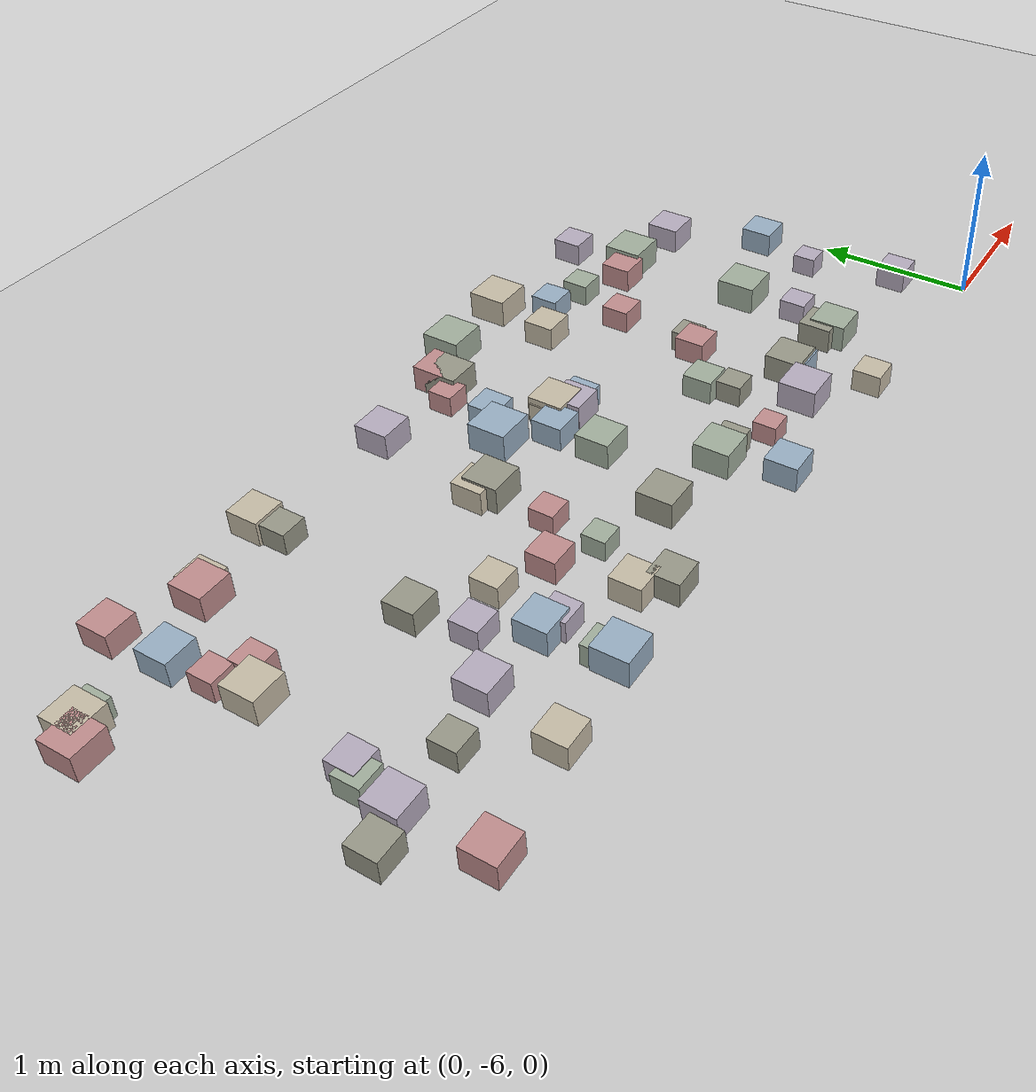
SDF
<sdf version="1.6">
 <world name="small_maze_world">
  <include><uri>model://ground_plane</uri></include>
  <include><uri>model://sun</uri></include>
  <model name="box_7">
   <static>false</static>
   <pose>-5.69 -3.78 0.05 0 0 0</pose>
   <link name="link">
    <inertial>
     <mass>0.2</mass>
     <inertia><ixx>0.001</ixx><iyy>0.001</iyy><izz>0.001</izz><ixy>0</ixy><ixz>0</ixz><iyz>0</iyz></inertia>
    </inertial>
    <collision name="collision"><geometry><box><size>0.22 0.22 0.22</size></box></geometry></collision>
    <visual name="visual">
     <geometry><box><size>0.22 0.22 0.22</size></box></geometry>
     <material><ambient>0.78 0.74 0.66 1</ambient><diffuse>0.78 0.74 0.66 1</diffuse></material>
    </visual>
   </link>
  </model>
  <model name="box_13">
   <static>false</static>
   <pose>-0.29 -4.98 0.05 0 0 0</pose>
   <link name="link">
    <inertial>
     <mass>0.2</mass>
     <inertia><ixx>0.001</ixx><iyy>0.001</iyy><izz>0.001</izz><ixy>0</ixy><ixz>0</ixz><iyz>0</iyz></inertia>
    </inertial>
    <collision name="collision"><geometry><box><size>0.15 0.15 0.15</size></box></geometry></collision>
    <visual name="visual">
     <geometry><box><size>0.15 0.15 0.15</size></box></geometry>
     <material><ambient>0.72 0.68 0.75 1</ambient><diffuse>0.72 0.68 0.75 1</diffuse></material>
    </visual>
   </link>
  </model>
  <model name="box_20">
   <static>false</static>
   <pose>-4.71 -3.63 0.05 0 0 0</pose>
   <link name="link">
    <inertial>
     <mass>0.2</mass>
     <inertia><ixx>0.001</ixx><iyy>0.001</iyy><izz>0.001</izz><ixy>0</ixy><ixz>0</ixz><iyz>0</iyz></inertia>
    </inertial>
    <collision name="collision"><geometry><box><size>0.19 0.19 0.19</size></box></geometry></collision>
    <visual name="visual">
     <geometry><box><size>0.19 0.19 0.19</size></box></geometry>
     <material><ambient>0.78 0.74 0.66 1</ambient><diffuse>0.78 0.74 0.66 1</diffuse></material>
    </visual>
   </link>
  </model>
  <model name="box_23">
   <static>false</static>
   <pose>-5.53 -5.41 0.05 0 0 0</pose>
   <link name="link">
    <inertial>
     <mass>0.2</mass>
     <inertia><ixx>0.001</ixx><iyy>0.001</iyy><izz>0.001</izz><ixy>0</ixy><ixz>0</ixz><iyz>0</iyz></inertia>
    </inertial>
    <collision name="collision"><geometry><box><size>0.19 0.19 0.19</size></box></geometry></collision>
    <visual name="visual">
     <geometry><box><size>0.19 0.19 0.19</size></box></geometry>
     <material><ambient>0.6 0.6 0.54 1</ambient><diffuse>0.6 0.6 0.54 1</diffuse></material>
    </visual>
   </link>
  </model>
  <model name="box_33">
   <static>false</static>
   <pose>-4.2 -3.53 0.05 0 0 0</pose>
   <link name="link">
    <inertial>
     <mass>0.2</mass>
     <inertia><ixx>0.001</ixx><iyy>0.001</iyy><izz>0.001</izz><ixy>0</ixy><ixz>0</ixz><iyz>0</iyz></inertia>
    </inertial>
    <collision name="collision"><geometry><box><size>0.21 0.21 0.21</size></box></geometry></collision>
    <visual name="visual">
     <geometry><box><size>0.21 0.21 0.21</size></box></geometry>
     <material><ambient>0.78 0.74 0.66 1</ambient><diffuse>0.78 0.74 0.66 1</diffuse></material>
    </visual>
   </link>
  </model>
  <model name="box_36">
   <static>false</static>
   <pose>-0.86 -3.91 0.05 0 0 0</pose>
   <link name="link">
    <inertial>
     <mass>0.2</mass>
     <inertia><ixx>0.001</ixx><iyy>0.001</iyy><izz>0.001</izz><ixy>0</ixy><ixz>0</ixz><iyz>0</iyz></inertia>
    </inertial>
    <collision name="collision"><geometry><box><size>0.25 0.25 0.25</size></box></geometry></collision>
    <visual name="visual">
     <geometry><box><size>0.25 0.25 0.25</size></box></geometry>
     <material><ambient>0.64 0.69 0.62 1</ambient><diffuse>0.64 0.69 0.62 1</diffuse></material>
    </visual>
   </link>
  </model>
  <model name="box_38">
   <static>false</static>
   <pose>-4.62 -5.77 0.05 0 0 0</pose>
   <link name="link">
    <inertial>
     <mass>0.2</mass>
     <inertia><ixx>0.001</ixx><iyy>0.001</iyy><izz>0.001</izz><ixy>0</ixy><ixz>0</ixz><iyz>0</iyz></inertia>
    </inertial>
    <collision name="collision"><geometry><box><size>0.2 0.2 0.2</size></box></geometry></collision>
    <visual name="visual">
     <geometry><box><size>0.2 0.2 0.2</size></box></geometry>
     <material><ambient>0.78 0.74 0.66 1</ambient><diffuse>0.78 0.74 0.66 1</diffuse></material>
    </visual>
   </link>
  </model>
  <model name="box_39">
   <static>false</static>
   <pose>-0.14 -5.56 0.05 0 0 0</pose>
   <link name="link">
    <inertial>
     <mass>0.2</mass>
     <inertia><ixx>0.001</ixx><iyy>0.001</iyy><izz>0.001</izz><ixy>0</ixy><ixz>0</ixz><iyz>0</iyz></inertia>
    </inertial>
    <collision name="collision"><geometry><box><size>0.19 0.19 0.19</size></box></geometry></collision>
    <visual name="visual">
     <geometry><box><size>0.19 0.19 0.19</size></box></geometry>
     <material><ambient>0.72 0.68 0.75 1</ambient><diffuse>0.72 0.68 0.75 1</diffuse></material>
    </visual>
   </link>
  </model>
  <model name="box_41">
   <static>false</static>
   <pose>-3.65 -5.07 0.05 0 0 0</pose>
   <link name="link">
    <inertial>
     <mass>0.2</mass>
     <inertia><ixx>0.001</ixx><iyy>0.001</iyy><izz>0.001</izz><ixy>0</ixy><ixz>0</ixz><iyz>0</iyz></inertia>
    </inertial>
    <collision name="collision"><geometry><box><size>0.19 0.19 0.19</size></box></geometry></collision>
    <visual name="visual">
     <geometry><box><size>0.19 0.19 0.19</size></box></geometry>
     <material><ambient>0.76 0.56 0.56 1</ambient><diffuse>0.76 0.56 0.56 1</diffuse></material>
    </visual>
   </link>
  </model>
  <model name="box_45">
   <static>false</static>
   <pose>-1.45 -5.4 0.05 0 0 0</pose>
   <link name="link">
    <inertial>
     <mass>0.2</mass>
     <inertia><ixx>0.001</ixx><iyy>0.001</iyy><izz>0.001</izz><ixy>0</ixy><ixz>0</ixz><iyz>0</iyz></inertia>
    </inertial>
    <collision name="collision"><geometry><box><size>0.23 0.23 0.23</size></box></geometry></collision>
    <visual name="visual">
     <geometry><box><size>0.23 0.23 0.23</size></box></geometry>
     <material><ambient>0.6 0.6 0.54 1</ambient><diffuse>0.6 0.6 0.54 1</diffuse></material>
    </visual>
   </link>
  </model>
  <model name="box_47">
   <static>false</static>
   <pose>-3.4 -4.42 0.05 0 0 0</pose>
   <link name="link">
    <inertial>
     <mass>0.2</mass>
     <inertia><ixx>0.001</ixx><iyy>0.001</iyy><izz>0.001</izz><ixy>0</ixy><ixz>0</ixz><iyz>0</iyz></inertia>
    </inertial>
    <collision name="collision"><geometry><box><size>0.2 0.2 0.2</size></box></geometry></collision>
    <visual name="visual">
     <geometry><box><size>0.2 0.2 0.2</size></box></geometry>
     <material><ambient>0.78 0.74 0.66 1</ambient><diffuse>0.78 0.74 0.66 1</diffuse></material>
    </visual>
   </link>
  </model>
  <model name="box_53">
   <static>false</static>
   <pose>-1.88 -5.03 0.05 0 0 0</pose>
   <link name="link">
    <inertial>
     <mass>0.2</mass>
     <inertia><ixx>0.001</ixx><iyy>0.001</iyy><izz>0.001</izz><ixy>0</ixy><ixz>0</ixz><iyz>0</iyz></inertia>
    </inertial>
    <collision name="collision"><geometry><box><size>0.19 0.19 0.19</size></box></geometry></collision>
    <visual name="visual">
     <geometry><box><size>0.19 0.19 0.19</size></box></geometry>
     <material><ambient>0.64 0.69 0.62 1</ambient><diffuse>0.64 0.69 0.62 1</diffuse></material>
    </visual>
   </link>
  </model>
  <model name="box_80">
   <static>false</static>
   <pose>-0.45 -3.98 0.05 0 0 0</pose>
   <link name="link">
    <inertial>
     <mass>0.2</mass>
     <inertia><ixx>0.001</ixx><iyy>0.001</iyy><izz>0.001</izz><ixy>0</ixy><ixz>0</ixz><iyz>0</iyz></inertia>
    </inertial>
    <collision name="collision"><geometry><box><size>0.22 0.22 0.22</size></box></geometry></collision>
    <visual name="visual">
     <geometry><box><size>0.22 0.22 0.22</size></box></geometry>
     <material><ambient>0.72 0.68 0.75 1</ambient><diffuse>0.72 0.68 0.75 1</diffuse></material>
    </visual>
   </link>
  </model>
  <model name="box_81">
   <static>false</static>
   <pose>-3.59 -5.55 0.05 0 0 0</pose>
   <link name="link">
    <inertial>
     <mass>0.2</mass>
     <inertia><ixx>0.001</ixx><iyy>0.001</iyy><izz>0.001</izz><ixy>0</ixy><ixz>0</ixz><iyz>0</iyz></inertia>
    </inertial>
    <collision name="collision"><geometry><box><size>0.2 0.2 0.2</size></box></geometry></collision>
    <visual name="visual">
     <geometry><box><size>0.2 0.2 0.2</size></box></geometry>
     <material><ambient>0.78 0.74 0.66 1</ambient><diffuse>0.78 0.74 0.66 1</diffuse></material>
    </visual>
   </link>
  </model>
  <model name="box_87">
   <static>false</static>
   <pose>-5.23 -5.04 0.05 0 0 0</pose>
   <link name="link">
    <inertial>
     <mass>0.2</mass>
     <inertia><ixx>0.001</ixx><iyy>0.001</iyy><izz>0.001</izz><ixy>0</ixy><ixz>0</ixz><iyz>0</iyz></inertia>
    </inertial>
    <collision name="collision"><geometry><box><size>0.18 0.18 0.18</size></box></geometry></collision>
    <visual name="visual">
     <geometry><box><size>0.18 0.18 0.18</size></box></geometry>
     <material><ambient>0.72 0.68 0.75 1</ambient><diffuse>0.72 0.68 0.75 1</diffuse></material>
    </visual>
   </link>
  </model>
  <model name="box_92">
   <static>false</static>
   <pose>-2.95 -5.36 0.05 0 0 0</pose>
   <link name="link">
    <inertial>
     <mass>0.2</mass>
     <inertia><ixx>0.001</ixx><iyy>0.001</iyy><izz>0.001</izz><ixy>0</ixy><ixz>0</ixz><iyz>0</iyz></inertia>
    </inertial>
    <collision name="collision"><geometry><box><size>0.23 0.23 0.23</size></box></geometry></collision>
    <visual name="visual">
     <geometry><box><size>0.23 0.23 0.23</size></box></geometry>
     <material><ambient>0.6 0.6 0.54 1</ambient><diffuse>0.6 0.6 0.54 1</diffuse></material>
    </visual>
   </link>
  </model>
  <model name="box_95">
   <static>false</static>
   <pose>-1.56 -4.8 0.05 0 0 0</pose>
   <link name="link">
    <inertial>
     <mass>0.2</mass>
     <inertia><ixx>0.001</ixx><iyy>0.001</iyy><izz>0.001</izz><ixy>0</ixy><ixz>0</ixz><iyz>0</iyz></inertia>
    </inertial>
    <collision name="collision"><geometry><box><size>0.19 0.19 0.19</size></box></geometry></collision>
    <visual name="visual">
     <geometry><box><size>0.19 0.19 0.19</size></box></geometry>
     <material><ambient>0.76 0.56 0.56 1</ambient><diffuse>0.76 0.56 0.56 1</diffuse></material>
    </visual>
   </link>
  </model>
  <model name="box_98">
   <static>false</static>
   <pose>-3.39 -5.22 0.05 0 0 0</pose>
   <link name="link">
    <inertial>
     <mass>0.2</mass>
     <inertia><ixx>0.001</ixx><iyy>0.001</iyy><izz>0.001</izz><ixy>0</ixy><ixz>0</ixz><iyz>0</iyz></inertia>
    </inertial>
    <collision name="collision"><geometry><box><size>0.15 0.15 0.15</size></box></geometry></collision>
    <visual name="visual">
     <geometry><box><size>0.15 0.15 0.15</size></box></geometry>
     <material><ambient>0.64 0.69 0.62 1</ambient><diffuse>0.64 0.69 0.62 1</diffuse></material>
    </visual>
   </link>
  </model>
  <model name="box_101">
   <static>false</static>
   <pose>-5.16 -4.12 0.05 0 0 0</pose>
   <link name="link">
    <inertial>
     <mass>0.2</mass>
     <inertia><ixx>0.001</ixx><iyy>0.001</iyy><izz>0.001</izz><ixy>0</ixy><ixz>0</ixz><iyz>0</iyz></inertia>
    </inertial>
    <collision name="collision"><geometry><box><size>0.16 0.16 0.16</size></box></geometry></collision>
    <visual name="visual">
     <geometry><box><size>0.16 0.16 0.16</size></box></geometry>
     <material><ambient>0.76 0.56 0.56 1</ambient><diffuse>0.76 0.56 0.56 1</diffuse></material>
    </visual>
   </link>
  </model>
  <model name="box_110">
   <static>false</static>
   <pose>-4.2 -3.72 0.05 0 0 0</pose>
   <link name="link">
    <inertial>
     <mass>0.2</mass>
     <inertia><ixx>0.001</ixx><iyy>0.001</iyy><izz>0.001</izz><ixy>0</ixy><ixz>0</ixz><iyz>0</iyz></inertia>
    </inertial>
    <collision name="collision"><geometry><box><size>0.17 0.17 0.17</size></box></geometry></collision>
    <visual name="visual">
     <geometry><box><size>0.17 0.17 0.17</size></box></geometry>
     <material><ambient>0.6 0.6 0.54 1</ambient><diffuse>0.6 0.6 0.54 1</diffuse></material>
    </visual>
   </link>
  </model>
  <model name="box_120">
   <static>false</static>
   <pose>-5.13 -4.36 0.05 0 0 0</pose>
   <link name="link">
    <inertial>
     <mass>0.2</mass>
     <inertia><ixx>0.001</ixx><iyy>0.001</iyy><izz>0.001</izz><ixy>0</ixy><ixz>0</ixz><iyz>0</iyz></inertia>
    </inertial>
    <collision name="collision"><geometry><box><size>0.22 0.22 0.22</size></box></geometry></collision>
    <visual name="visual">
     <geometry><box><size>0.22 0.22 0.22</size></box></geometry>
     <material><ambient>0.78 0.74 0.66 1</ambient><diffuse>0.78 0.74 0.66 1</diffuse></material>
    </visual>
   </link>
  </model>
  <model name="box_122">
   <static>false</static>
   <pose>-2.07 -5.57 0.05 0 0 0</pose>
   <link name="link">
    <inertial>
     <mass>0.2</mass>
     <inertia><ixx>0.001</ixx><iyy>0.001</iyy><izz>0.001</izz><ixy>0</ixy><ixz>0</ixz><iyz>0</iyz></inertia>
    </inertial>
    <collision name="collision"><geometry><box><size>0.15 0.15 0.15</size></box></geometry></collision>
    <visual name="visual">
     <geometry><box><size>0.15 0.15 0.15</size></box></geometry>
     <material><ambient>0.76 0.56 0.56 1</ambient><diffuse>0.76 0.56 0.56 1</diffuse></material>
    </visual>
   </link>
  </model>
  <model name="box_126">
   <static>false</static>
   <pose>-5.28 -5.11 0.05 0 0 0</pose>
   <link name="link">
    <inertial>
     <mass>0.2</mass>
     <inertia><ixx>0.001</ixx><iyy>0.001</iyy><izz>0.001</izz><ixy>0</ixy><ixz>0</ixz><iyz>0</iyz></inertia>
    </inertial>
    <collision name="collision"><geometry><box><size>0.17 0.17 0.17</size></box></geometry></collision>
    <visual name="visual">
     <geometry><box><size>0.17 0.17 0.17</size></box></geometry>
     <material><ambient>0.64 0.69 0.62 1</ambient><diffuse>0.64 0.69 0.62 1</diffuse></material>
    </visual>
   </link>
  </model>
  <model name="box_133">
   <static>false</static>
   <pose>-2.71 -4.49 0.05 0 0 0</pose>
   <link name="link">
    <inertial>
     <mass>0.2</mass>
     <inertia><ixx>0.001</ixx><iyy>0.001</iyy><izz>0.001</izz><ixy>0</ixy><ixz>0</ixz><iyz>0</iyz></inertia>
    </inertial>
    <collision name="collision"><geometry><box><size>0.2 0.2 0.2</size></box></geometry></collision>
    <visual name="visual">
     <geometry><box><size>0.2 0.2 0.2</size></box></geometry>
     <material><ambient>0.6 0.69 0.77 1</ambient><diffuse>0.6 0.69 0.77 1</diffuse></material>
    </visual>
   </link>
  </model>
  <model name="box_137">
   <static>false</static>
   <pose>-4.76 -3.67 0.05 0 0 0</pose>
   <link name="link">
    <inertial>
     <mass>0.2</mass>
     <inertia><ixx>0.001</ixx><iyy>0.001</iyy><izz>0.001</izz><ixy>0</ixy><ixz>0</ixz><iyz>0</iyz></inertia>
    </inertial>
    <collision name="collision"><geometry><box><size>0.22 0.22 0.22</size></box></geometry></collision>
    <visual name="visual">
     <geometry><box><size>0.22 0.22 0.22</size></box></geometry>
     <material><ambient>0.76 0.56 0.56 1</ambient><diffuse>0.76 0.56 0.56 1</diffuse></material>
    </visual>
   </link>
  </model>
  <model name="box_138">
   <static>false</static>
   <pose>-4.54 -5.27 0.05 0 0 0</pose>
   <link name="link">
    <inertial>
     <mass>0.2</mass>
     <inertia><ixx>0.001</ixx><iyy>0.001</iyy><izz>0.001</izz><ixy>0</ixy><ixz>0</ixz><iyz>0</iyz></inertia>
    </inertial>
    <collision name="collision"><geometry><box><size>0.21 0.21 0.21</size></box></geometry></collision>
    <visual name="visual">
     <geometry><box><size>0.21 0.21 0.21</size></box></geometry>
     <material><ambient>0.72 0.68 0.75 1</ambient><diffuse>0.72 0.68 0.75 1</diffuse></material>
    </visual>
   </link>
  </model>
  <model name="box_146">
   <static>false</static>
   <pose>-4.31 -4.66 0.05 0 0 0</pose>
   <link name="link">
    <inertial>
     <mass>0.2</mass>
     <inertia><ixx>0.001</ixx><iyy>0.001</iyy><izz>0.001</izz><ixy>0</ixy><ixz>0</ixz><iyz>0</iyz></inertia>
    </inertial>
    <collision name="collision"><geometry><box><size>0.2 0.2 0.2</size></box></geometry></collision>
    <visual name="visual">
     <geometry><box><size>0.2 0.2 0.2</size></box></geometry>
     <material><ambient>0.6 0.6 0.54 1</ambient><diffuse>0.6 0.6 0.54 1</diffuse></material>
    </visual>
   </link>
  </model>
  <model name="box_153">
   <static>false</static>
   <pose>-2.78 -4.08 0.05 0 0 0</pose>
   <link name="link">
    <inertial>
     <mass>0.2</mass>
     <inertia><ixx>0.001</ixx><iyy>0.001</iyy><izz>0.001</izz><ixy>0</ixy><ixz>0</ixz><iyz>0</iyz></inertia>
    </inertial>
    <collision name="collision"><geometry><box><size>0.19 0.19 0.19</size></box></geometry></collision>
    <visual name="visual">
     <geometry><box><size>0.19 0.19 0.19</size></box></geometry>
     <material><ambient>0.6 0.69 0.77 1</ambient><diffuse>0.6 0.69 0.77 1</diffuse></material>
    </visual>
   </link>
  </model>
  <model name="box_157">
   <static>false</static>
   <pose>-4.08 -5.3 0.05 0 0 0</pose>
   <link name="link">
    <inertial>
     <mass>0.2</mass>
     <inertia><ixx>0.001</ixx><iyy>0.001</iyy><izz>0.001</izz><ixy>0</ixy><ixz>0</ixz><iyz>0</iyz></inertia>
    </inertial>
    <collision name="collision"><geometry><box><size>0.21 0.21 0.21</size></box></geometry></collision>
    <visual name="visual">
     <geometry><box><size>0.21 0.21 0.21</size></box></geometry>
     <material><ambient>0.6 0.69 0.77 1</ambient><diffuse>0.6 0.69 0.77 1</diffuse></material>
    </visual>
   </link>
  </model>
  <model name="box_169">
   <static>false</static>
   <pose>-5.31 -5.34 0.05 0 0 0</pose>
   <link name="link">
    <inertial>
     <mass>0.2</mass>
     <inertia><ixx>0.001</ixx><iyy>0.001</iyy><izz>0.001</izz><ixy>0</ixy><ixz>0</ixz><iyz>0</iyz></inertia>
    </inertial>
    <collision name="collision"><geometry><box><size>0.21 0.21 0.21</size></box></geometry></collision>
    <visual name="visual">
     <geometry><box><size>0.21 0.21 0.21</size></box></geometry>
     <material><ambient>0.72 0.68 0.75 1</ambient><diffuse>0.72 0.68 0.75 1</diffuse></material>
    </visual>
   </link>
  </model>
  <model name="box_179">
   <static>false</static>
   <pose>-2.93 -4.24 0.05 0 0 0</pose>
   <link name="link">
    <inertial>
     <mass>0.2</mass>
     <inertia><ixx>0.001</ixx><iyy>0.001</iyy><izz>0.001</izz><ixy>0</ixy><ixz>0</ixz><iyz>0</iyz></inertia>
    </inertial>
    <collision name="collision"><geometry><box><size>0.25 0.25 0.25</size></box></geometry></collision>
    <visual name="visual">
     <geometry><box><size>0.25 0.25 0.25</size></box></geometry>
     <material><ambient>0.6 0.69 0.77 1</ambient><diffuse>0.6 0.69 0.77 1</diffuse></material>
    </visual>
   </link>
  </model>
  <model name="box_180">
   <static>false</static>
   <pose>-5.0 -4.24 0.05 0 0 0</pose>
   <link name="link">
    <inertial>
     <mass>0.2</mass>
     <inertia><ixx>0.001</ixx><iyy>0.001</iyy><izz>0.001</izz><ixy>0</ixy><ixz>0</ixz><iyz>0</iyz></inertia>
    </inertial>
    <collision name="collision"><geometry><box><size>0.17 0.17 0.17</size></box></geometry></collision>
    <visual name="visual">
     <geometry><box><size>0.17 0.17 0.17</size></box></geometry>
     <material><ambient>0.76 0.56 0.56 1</ambient><diffuse>0.76 0.56 0.56 1</diffuse></material>
    </visual>
   </link>
  </model>
  <model name="box_205">
   <static>false</static>
   <pose>-3.98 -5.35 0.05 0 0 0</pose>
   <link name="link">
    <inertial>
     <mass>0.2</mass>
     <inertia><ixx>0.001</ixx><iyy>0.001</iyy><izz>0.001</izz><ixy>0</ixy><ixz>0</ixz><iyz>0</iyz></inertia>
    </inertial>
    <collision name="collision"><geometry><box><size>0.17 0.17 0.17</size></box></geometry></collision>
    <visual name="visual">
     <geometry><box><size>0.17 0.17 0.17</size></box></geometry>
     <material><ambient>0.72 0.68 0.75 1</ambient><diffuse>0.72 0.68 0.75 1</diffuse></material>
    </visual>
   </link>
  </model>
  <model name="box_211">
   <static>false</static>
   <pose>-3.27 -3.66 0.05 0 0 0</pose>
   <link name="link">
    <inertial>
     <mass>0.2</mass>
     <inertia><ixx>0.001</ixx><iyy>0.001</iyy><izz>0.001</izz><ixy>0</ixy><ixz>0</ixz><iyz>0</iyz></inertia>
    </inertial>
    <collision name="collision"><geometry><box><size>0.22 0.22 0.22</size></box></geometry></collision>
    <visual name="visual">
     <geometry><box><size>0.22 0.22 0.22</size></box></geometry>
     <material><ambient>0.72 0.68 0.75 1</ambient><diffuse>0.72 0.68 0.75 1</diffuse></material>
    </visual>
   </link>
  </model>
  <model name="box_224">
   <static>false</static>
   <pose>-1.62 -3.75 0.05 0 0 0</pose>
   <link name="link">
    <inertial>
     <mass>0.2</mass>
     <inertia><ixx>0.001</ixx><iyy>0.001</iyy><izz>0.001</izz><ixy>0</ixy><ixz>0</ixz><iyz>0</iyz></inertia>
    </inertial>
    <collision name="collision"><geometry><box><size>0.18 0.18 0.18</size></box></geometry></collision>
    <visual name="visual">
     <geometry><box><size>0.18 0.18 0.18</size></box></geometry>
     <material><ambient>0.6 0.69 0.77 1</ambient><diffuse>0.6 0.69 0.77 1</diffuse></material>
    </visual>
   </link>
  </model>
  <model name="box_233">
   <static>false</static>
   <pose>-2.33 -3.47 0.05 0 0 0</pose>
   <link name="link">
    <inertial>
     <mass>0.2</mass>
     <inertia><ixx>0.001</ixx><iyy>0.001</iyy><izz>0.001</izz><ixy>0</ixy><ixz>0</ixz><iyz>0</iyz></inertia>
    </inertial>
    <collision name="collision"><geometry><box><size>0.25 0.25 0.25</size></box></geometry></collision>
    <visual name="visual">
     <geometry><box><size>0.25 0.25 0.25</size></box></geometry>
     <material><ambient>0.64 0.69 0.62 1</ambient><diffuse>0.64 0.69 0.62 1</diffuse></material>
    </visual>
   </link>
  </model>
  <model name="box_247">
   <static>false</static>
   <pose>-2.31 -5.44 0.05 0 0 0</pose>
   <link name="link">
    <inertial>
     <mass>0.2</mass>
     <inertia><ixx>0.001</ixx><iyy>0.001</iyy><izz>0.001</izz><ixy>0</ixy><ixz>0</ixz><iyz>0</iyz></inertia>
    </inertial>
    <collision name="collision"><geometry><box><size>0.17 0.17 0.17</size></box></geometry></collision>
    <visual name="visual">
     <geometry><box><size>0.17 0.17 0.17</size></box></geometry>
     <material><ambient>0.6 0.6 0.54 1</ambient><diffuse>0.6 0.6 0.54 1</diffuse></material>
    </visual>
   </link>
  </model>
  <model name="box_249">
   <static>false</static>
   <pose>-5.29 -5.85 0.05 0 0 0</pose>
   <link name="link">
    <inertial>
     <mass>0.2</mass>
     <inertia><ixx>0.001</ixx><iyy>0.001</iyy><izz>0.001</izz><ixy>0</ixy><ixz>0</ixz><iyz>0</iyz></inertia>
    </inertial>
    <collision name="collision"><geometry><box><size>0.21 0.21 0.21</size></box></geometry></collision>
    <visual name="visual">
     <geometry><box><size>0.21 0.21 0.21</size></box></geometry>
     <material><ambient>0.76 0.56 0.56 1</ambient><diffuse>0.76 0.56 0.56 1</diffuse></material>
    </visual>
   </link>
  </model>
  <model name="box_251">
   <static>false</static>
   <pose>-4.04 -5.74 0.05 0 0 0</pose>
   <link name="link">
    <inertial>
     <mass>0.2</mass>
     <inertia><ixx>0.001</ixx><iyy>0.001</iyy><izz>0.001</izz><ixy>0</ixy><ixz>0</ixz><iyz>0</iyz></inertia>
    </inertial>
    <collision name="collision"><geometry><box><size>0.23 0.23 0.23</size></box></geometry></collision>
    <visual name="visual">
     <geometry><box><size>0.23 0.23 0.23</size></box></geometry>
     <material><ambient>0.6 0.69 0.77 1</ambient><diffuse>0.6 0.69 0.77 1</diffuse></material>
    </visual>
   </link>
  </model>
  <model name="box_257">
   <static>false</static>
   <pose>-5.79 -3.88 0.05 0 0 0</pose>
   <link name="link">
    <inertial>
     <mass>0.2</mass>
     <inertia><ixx>0.001</ixx><iyy>0.001</iyy><izz>0.001</izz><ixy>0</ixy><ixz>0</ixz><iyz>0</iyz></inertia>
    </inertial>
    <collision name="collision"><geometry><box><size>0.22 0.22 0.22</size></box></geometry></collision>
    <visual name="visual">
     <geometry><box><size>0.22 0.22 0.22</size></box></geometry>
     <material><ambient>0.76 0.56 0.56 1</ambient><diffuse>0.76 0.56 0.56 1</diffuse></material>
    </visual>
   </link>
  </model>
  <model name="box_262">
   <static>false</static>
   <pose>-4.9 -5.36 0.05 0 0 0</pose>
   <link name="link">
    <inertial>
     <mass>0.2</mass>
     <inertia><ixx>0.001</ixx><iyy>0.001</iyy><izz>0.001</izz><ixy>0</ixy><ixz>0</ixz><iyz>0</iyz></inertia>
    </inertial>
    <collision name="collision"><geometry><box><size>0.17 0.17 0.17</size></box></geometry></collision>
    <visual name="visual">
     <geometry><box><size>0.17 0.17 0.17</size></box></geometry>
     <material><ambient>0.6 0.6 0.54 1</ambient><diffuse>0.6 0.6 0.54 1</diffuse></material>
    </visual>
   </link>
  </model>
  <model name="box_264">
   <static>false</static>
   <pose>-4.25 -5.01 0.05 0 0 0</pose>
   <link name="link">
    <inertial>
     <mass>0.2</mass>
     <inertia><ixx>0.001</ixx><iyy>0.001</iyy><izz>0.001</izz><ixy>0</ixy><ixz>0</ixz><iyz>0</iyz></inertia>
    </inertial>
    <collision name="collision"><geometry><box><size>0.18 0.18 0.18</size></box></geometry></collision>
    <visual name="visual">
     <geometry><box><size>0.18 0.18 0.18</size></box></geometry>
     <material><ambient>0.72 0.68 0.75 1</ambient><diffuse>0.72 0.68 0.75 1</diffuse></material>
    </visual>
   </link>
  </model>
  <model name="box_265">
   <static>false</static>
   <pose>-2.79 -3.77 0.05 0 0 0</pose>
   <link name="link">
    <inertial>
     <mass>0.2</mass>
     <inertia><ixx>0.001</ixx><iyy>0.001</iyy><izz>0.001</izz><ixy>0</ixy><ixz>0</ixz><iyz>0</iyz></inertia>
    </inertial>
    <collision name="collision"><geometry><box><size>0.16 0.16 0.16</size></box></geometry></collision>
    <visual name="visual">
     <geometry><box><size>0.16 0.16 0.16</size></box></geometry>
     <material><ambient>0.76 0.56 0.56 1</ambient><diffuse>0.76 0.56 0.56 1</diffuse></material>
    </visual>
   </link>
  </model>
  <model name="box_277">
   <static>false</static>
   <pose>-1.51 -4.72 0.05 0 0 0</pose>
   <link name="link">
    <inertial>
     <mass>0.2</mass>
     <inertia><ixx>0.001</ixx><iyy>0.001</iyy><izz>0.001</izz><ixy>0</ixy><ixz>0</ixz><iyz>0</iyz></inertia>
    </inertial>
    <collision name="collision"><geometry><box><size>0.16 0.16 0.16</size></box></geometry></collision>
    <visual name="visual">
     <geometry><box><size>0.16 0.16 0.16</size></box></geometry>
     <material><ambient>0.6 0.6 0.54 1</ambient><diffuse>0.6 0.6 0.54 1</diffuse></material>
    </visual>
   </link>
  </model>
  <model name="box_279">
   <static>false</static>
   <pose>-0.95 -5.47 0.05 0 0 0</pose>
   <link name="link">
    <inertial>
     <mass>0.2</mass>
     <inertia><ixx>0.001</ixx><iyy>0.001</iyy><izz>0.001</izz><ixy>0</ixy><ixz>0</ixz><iyz>0</iyz></inertia>
    </inertial>
    <collision name="collision"><geometry><box><size>0.23 0.23 0.23</size></box></geometry></collision>
    <visual name="visual">
     <geometry><box><size>0.23 0.23 0.23</size></box></geometry>
     <material><ambient>0.64 0.69 0.62 1</ambient><diffuse>0.64 0.69 0.62 1</diffuse></material>
    </visual>
   </link>
  </model>
  <model name="box_303">
   <static>false</static>
   <pose>-2.4 -4.46 0.05 0 0 0</pose>
   <link name="link">
    <inertial>
     <mass>0.2</mass>
     <inertia><ixx>0.001</ixx><iyy>0.001</iyy><izz>0.001</izz><ixy>0</ixy><ixz>0</ixz><iyz>0</iyz></inertia>
    </inertial>
    <collision name="collision"><geometry><box><size>0.18 0.18 0.18</size></box></geometry></collision>
    <visual name="visual">
     <geometry><box><size>0.18 0.18 0.18</size></box></geometry>
     <material><ambient>0.6 0.69 0.77 1</ambient><diffuse>0.6 0.69 0.77 1</diffuse></material>
    </visual>
   </link>
  </model>
  <model name="box_307">
   <static>false</static>
   <pose>-0.85 -4.77 0.05 0 0 0</pose>
   <link name="link">
    <inertial>
     <mass>0.2</mass>
     <inertia><ixx>0.001</ixx><iyy>0.001</iyy><izz>0.001</izz><ixy>0</ixy><ixz>0</ixz><iyz>0</iyz></inertia>
    </inertial>
    <collision name="collision"><geometry><box><size>0.25 0.25 0.25</size></box></geometry></collision>
    <visual name="visual">
     <geometry><box><size>0.25 0.25 0.25</size></box></geometry>
     <material><ambient>0.64 0.69 0.62 1</ambient><diffuse>0.64 0.69 0.62 1</diffuse></material>
    </visual>
   </link>
  </model>
  <model name="box_309">
   <static>false</static>
   <pose>-0.17 -4.57 0.05 0 0 0</pose>
   <link name="link">
    <inertial>
     <mass>0.2</mass>
     <inertia><ixx>0.001</ixx><iyy>0.001</iyy><izz>0.001</izz><ixy>0</ixy><ixz>0</ixz><iyz>0</iyz></inertia>
    </inertial>
    <collision name="collision"><geometry><box><size>0.21 0.21 0.21</size></box></geometry></collision>
    <visual name="visual">
     <geometry><box><size>0.21 0.21 0.21</size></box></geometry>
     <material><ambient>0.6 0.69 0.77 1</ambient><diffuse>0.6 0.69 0.77 1</diffuse></material>
    </visual>
   </link>
  </model>
  <model name="box_320">
   <static>false</static>
   <pose>-1.66 -5.6 0.05 0 0 0</pose>
   <link name="link">
    <inertial>
     <mass>0.2</mass>
     <inertia><ixx>0.001</ixx><iyy>0.001</iyy><izz>0.001</izz><ixy>0</ixy><ixz>0</ixz><iyz>0</iyz></inertia>
    </inertial>
    <collision name="collision"><geometry><box><size>0.24 0.24 0.24</size></box></geometry></collision>
    <visual name="visual">
     <geometry><box><size>0.24 0.24 0.24</size></box></geometry>
     <material><ambient>0.72 0.68 0.75 1</ambient><diffuse>0.72 0.68 0.75 1</diffuse></material>
    </visual>
   </link>
  </model>
  <model name="box_321">
   <static>false</static>
   <pose>-1.83 -5.21 0.05 0 0 0</pose>
   <link name="link">
    <inertial>
     <mass>0.2</mass>
     <inertia><ixx>0.001</ixx><iyy>0.001</iyy><izz>0.001</izz><ixy>0</ixy><ixz>0</ixz><iyz>0</iyz></inertia>
    </inertial>
    <collision name="collision"><geometry><box><size>0.16 0.16 0.16</size></box></geometry></collision>
    <visual name="visual">
     <geometry><box><size>0.16 0.16 0.16</size></box></geometry>
     <material><ambient>0.6 0.6 0.54 1</ambient><diffuse>0.6 0.6 0.54 1</diffuse></material>
    </visual>
   </link>
  </model>
  <model name="box_323">
   <static>false</static>
   <pose>-5.19 -3.46 0.05 0 0 0</pose>
   <link name="link">
    <inertial>
     <mass>0.2</mass>
     <inertia><ixx>0.001</ixx><iyy>0.001</iyy><izz>0.001</izz><ixy>0</ixy><ixz>0</ixz><iyz>0</iyz></inertia>
    </inertial>
    <collision name="collision"><geometry><box><size>0.2 0.2 0.2</size></box></geometry></collision>
    <visual name="visual">
     <geometry><box><size>0.2 0.2 0.2</size></box></geometry>
     <material><ambient>0.76 0.56 0.56 1</ambient><diffuse>0.76 0.56 0.56 1</diffuse></material>
    </visual>
   </link>
  </model>
  <model name="box_336">
   <static>false</static>
   <pose>-5.17 -3.84 0.05 0 0 0</pose>
   <link name="link">
    <inertial>
     <mass>0.2</mass>
     <inertia><ixx>0.001</ixx><iyy>0.001</iyy><izz>0.001</izz><ixy>0</ixy><ixz>0</ixz><iyz>0</iyz></inertia>
    </inertial>
    <collision name="collision"><geometry><box><size>0.21 0.21 0.21</size></box></geometry></collision>
    <visual name="visual">
     <geometry><box><size>0.21 0.21 0.21</size></box></geometry>
     <material><ambient>0.6 0.69 0.77 1</ambient><diffuse>0.6 0.69 0.77 1</diffuse></material>
    </visual>
   </link>
  </model>
  <model name="box_342">
   <static>false</static>
   <pose>-2.54 -4.38 0.05 0 0 0</pose>
   <link name="link">
    <inertial>
     <mass>0.2</mass>
     <inertia><ixx>0.001</ixx><iyy>0.001</iyy><izz>0.001</izz><ixy>0</ixy><ixz>0</ixz><iyz>0</iyz></inertia>
    </inertial>
    <collision name="collision"><geometry><box><size>0.23 0.23 0.23</size></box></geometry></collision>
    <visual name="visual">
     <geometry><box><size>0.23 0.23 0.23</size></box></geometry>
     <material><ambient>0.78 0.74 0.66 1</ambient><diffuse>0.78 0.74 0.66 1</diffuse></material>
    </visual>
   </link>
  </model>
  <model name="box_353">
   <static>false</static>
   <pose>-1.02 -5.41 0.05 0 0 0</pose>
   <link name="link">
    <inertial>
     <mass>0.2</mass>
     <inertia><ixx>0.001</ixx><iyy>0.001</iyy><izz>0.001</izz><ixy>0</ixy><ixz>0</ixz><iyz>0</iyz></inertia>
    </inertial>
    <collision name="collision"><geometry><box><size>0.21 0.21 0.21</size></box></geometry></collision>
    <visual name="visual">
     <geometry><box><size>0.21 0.21 0.21</size></box></geometry>
     <material><ambient>0.6 0.6 0.54 1</ambient><diffuse>0.6 0.6 0.54 1</diffuse></material>
    </visual>
   </link>
  </model>
  <model name="box_354">
   <static>false</static>
   <pose>-5.61 -3.77 0.05 0 0 0</pose>
   <link name="link">
    <inertial>
     <mass>0.2</mass>
     <inertia><ixx>0.001</ixx><iyy>0.001</iyy><izz>0.001</izz><ixy>0</ixy><ixz>0</ixz><iyz>0</iyz></inertia>
    </inertial>
    <collision name="collision"><geometry><box><size>0.16 0.16 0.16</size></box></geometry></collision>
    <visual name="visual">
     <geometry><box><size>0.16 0.16 0.16</size></box></geometry>
     <material><ambient>0.64 0.69 0.62 1</ambient><diffuse>0.64 0.69 0.62 1</diffuse></material>
    </visual>
   </link>
  </model>
  <model name="box_355">
   <static>false</static>
   <pose>-2.64 -3.6 0.05 0 0 0</pose>
   <link name="link">
    <inertial>
     <mass>0.2</mass>
     <inertia><ixx>0.001</ixx><iyy>0.001</iyy><izz>0.001</izz><ixy>0</ixy><ixz>0</ixz><iyz>0</iyz></inertia>
    </inertial>
    <collision name="collision"><geometry><box><size>0.22 0.22 0.22</size></box></geometry></collision>
    <visual name="visual">
     <geometry><box><size>0.22 0.22 0.22</size></box></geometry>
     <material><ambient>0.76 0.56 0.56 1</ambient><diffuse>0.76 0.56 0.56 1</diffuse></material>
    </visual>
   </link>
  </model>
  <model name="box_357">
   <static>false</static>
   <pose>-1.8 -3.45 0.05 0 0 0</pose>
   <link name="link">
    <inertial>
     <mass>0.2</mass>
     <inertia><ixx>0.001</ixx><iyy>0.001</iyy><izz>0.001</izz><ixy>0</ixy><ixz>0</ixz><iyz>0</iyz></inertia>
    </inertial>
    <collision name="collision"><geometry><box><size>0.25 0.25 0.25</size></box></geometry></collision>
    <visual name="visual">
     <geometry><box><size>0.25 0.25 0.25</size></box></geometry>
     <material><ambient>0.78 0.74 0.66 1</ambient><diffuse>0.78 0.74 0.66 1</diffuse></material>
    </visual>
   </link>
  </model>
  <model name="box_358">
   <static>false</static>
   <pose>-2.64 -3.68 0.05 0 0 0</pose>
   <link name="link">
    <inertial>
     <mass>0.2</mass>
     <inertia><ixx>0.001</ixx><iyy>0.001</iyy><izz>0.001</izz><ixy>0</ixy><ixz>0</ixz><iyz>0</iyz></inertia>
    </inertial>
    <collision name="collision"><geometry><box><size>0.22 0.22 0.22</size></box></geometry></collision>
    <visual name="visual">
     <geometry><box><size>0.22 0.22 0.22</size></box></geometry>
     <material><ambient>0.6 0.6 0.54 1</ambient><diffuse>0.6 0.6 0.54 1</diffuse></material>
    </visual>
   </link>
  </model>
  <model name="box_359">
   <static>false</static>
   <pose>-3.36 -4.87 0.05 0 0 0</pose>
   <link name="link">
    <inertial>
     <mass>0.2</mass>
     <inertia><ixx>0.001</ixx><iyy>0.001</iyy><izz>0.001</izz><ixy>0</ixy><ixz>0</ixz><iyz>0</iyz></inertia>
    </inertial>
    <collision name="collision"><geometry><box><size>0.16 0.16 0.16</size></box></geometry></collision>
    <visual name="visual">
     <geometry><box><size>0.16 0.16 0.16</size></box></geometry>
     <material><ambient>0.76 0.56 0.56 1</ambient><diffuse>0.76 0.56 0.56 1</diffuse></material>
    </visual>
   </link>
  </model>
  <model name="box_374">
   <static>false</static>
   <pose>-1.4 -5.44 0.05 0 0 0</pose>
   <link name="link">
    <inertial>
     <mass>0.2</mass>
     <inertia><ixx>0.001</ixx><iyy>0.001</iyy><izz>0.001</izz><ixy>0</ixy><ixz>0</ixz><iyz>0</iyz></inertia>
    </inertial>
    <collision name="collision"><geometry><box><size>0.17 0.17 0.17</size></box></geometry></collision>
    <visual name="visual">
     <geometry><box><size>0.17 0.17 0.17</size></box></geometry>
     <material><ambient>0.6 0.69 0.77 1</ambient><diffuse>0.6 0.69 0.77 1</diffuse></material>
    </visual>
   </link>
  </model>
  <model name="box_379">
   <static>false</static>
   <pose>-2.7 -4.8 0.05 0 0 0</pose>
   <link name="link">
    <inertial>
     <mass>0.2</mass>
     <inertia><ixx>0.001</ixx><iyy>0.001</iyy><izz>0.001</izz><ixy>0</ixy><ixz>0</ixz><iyz>0</iyz></inertia>
    </inertial>
    <collision name="collision"><geometry><box><size>0.22 0.22 0.22</size></box></geometry></collision>
    <visual name="visual">
     <geometry><box><size>0.22 0.22 0.22</size></box></geometry>
     <material><ambient>0.64 0.69 0.62 1</ambient><diffuse>0.64 0.69 0.62 1</diffuse></material>
    </visual>
   </link>
  </model>
  <model name="box_381">
   <static>false</static>
   <pose>-1.06 -3.96 0.05 0 0 0</pose>
   <link name="link">
    <inertial>
     <mass>0.2</mass>
     <inertia><ixx>0.001</ixx><iyy>0.001</iyy><izz>0.001</izz><ixy>0</ixy><ixz>0</ixz><iyz>0</iyz></inertia>
    </inertial>
    <collision name="collision"><geometry><box><size>0.2 0.2 0.2</size></box></geometry></collision>
    <visual name="visual">
     <geometry><box><size>0.2 0.2 0.2</size></box></geometry>
     <material><ambient>0.76 0.56 0.56 1</ambient><diffuse>0.76 0.56 0.56 1</diffuse></material>
    </visual>
   </link>
  </model>
  <model name="box_387">
   <static>false</static>
   <pose>-0.95 -3.5 0.05 0 0 0</pose>
   <link name="link">
    <inertial>
     <mass>0.2</mass>
     <inertia><ixx>0.001</ixx><iyy>0.001</iyy><izz>0.001</izz><ixy>0</ixy><ixz>0</ixz><iyz>0</iyz></inertia>
    </inertial>
    <collision name="collision"><geometry><box><size>0.19 0.19 0.19</size></box></geometry></collision>
    <visual name="visual">
     <geometry><box><size>0.19 0.19 0.19</size></box></geometry>
     <material><ambient>0.72 0.68 0.75 1</ambient><diffuse>0.72 0.68 0.75 1</diffuse></material>
    </visual>
   </link>
  </model>
  <model name="box_388">
   <static>false</static>
   <pose>-2.48 -4.47 0.05 0 0 0</pose>
   <link name="link">
    <inertial>
     <mass>0.2</mass>
     <inertia><ixx>0.001</ixx><iyy>0.001</iyy><izz>0.001</izz><ixy>0</ixy><ixz>0</ixz><iyz>0</iyz></inertia>
    </inertial>
    <collision name="collision"><geometry><box><size>0.21 0.21 0.21</size></box></geometry></collision>
    <visual name="visual">
     <geometry><box><size>0.21 0.21 0.21</size></box></geometry>
     <material><ambient>0.72 0.68 0.75 1</ambient><diffuse>0.72 0.68 0.75 1</diffuse></material>
    </visual>
   </link>
  </model>
  <model name="box_392">
   <static>false</static>
   <pose>-1.49 -4.21 0.05 0 0 0</pose>
   <link name="link">
    <inertial>
     <mass>0.2</mass>
     <inertia><ixx>0.001</ixx><iyy>0.001</iyy><izz>0.001</izz><ixy>0</ixy><ixz>0</ixz><iyz>0</iyz></inertia>
    </inertial>
    <collision name="collision"><geometry><box><size>0.18 0.18 0.18</size></box></geometry></collision>
    <visual name="visual">
     <geometry><box><size>0.18 0.18 0.18</size></box></geometry>
     <material><ambient>0.76 0.56 0.56 1</ambient><diffuse>0.76 0.56 0.56 1</diffuse></material>
    </visual>
   </link>
  </model>
  <model name="box_396">
   <static>false</static>
   <pose>-3.95 -4.92 0.05 0 0 0</pose>
   <link name="link">
    <inertial>
     <mass>0.2</mass>
     <inertia><ixx>0.001</ixx><iyy>0.001</iyy><izz>0.001</izz><ixy>0</ixy><ixz>0</ixz><iyz>0</iyz></inertia>
    </inertial>
    <collision name="collision"><geometry><box><size>0.18 0.18 0.18</size></box></geometry></collision>
    <visual name="visual">
     <geometry><box><size>0.18 0.18 0.18</size></box></geometry>
     <material><ambient>0.78 0.74 0.66 1</ambient><diffuse>0.78 0.74 0.66 1</diffuse></material>
    </visual>
   </link>
  </model>
  <model name="box_401">
   <static>false</static>
   <pose>-3.46 -5.7 0.05 0 0 0</pose>
   <link name="link">
    <inertial>
     <mass>0.2</mass>
     <inertia><ixx>0.001</ixx><iyy>0.001</iyy><izz>0.001</izz><ixy>0</ixy><ixz>0</ixz><iyz>0</iyz></inertia>
    </inertial>
    <collision name="collision"><geometry><box><size>0.2 0.2 0.2</size></box></geometry></collision>
    <visual name="visual">
     <geometry><box><size>0.2 0.2 0.2</size></box></geometry>
     <material><ambient>0.6 0.6 0.54 1</ambient><diffuse>0.6 0.6 0.54 1</diffuse></material>
    </visual>
   </link>
  </model>
  <model name="box_406">
   <static>false</static>
   <pose>-1.31 -5.89 0.05 0 0 0</pose>
   <link name="link">
    <inertial>
     <mass>0.2</mass>
     <inertia><ixx>0.001</ixx><iyy>0.001</iyy><izz>0.001</izz><ixy>0</ixy><ixz>0</ixz><iyz>0</iyz></inertia>
    </inertial>
    <collision name="collision"><geometry><box><size>0.18 0.18 0.18</size></box></geometry></collision>
    <visual name="visual">
     <geometry><box><size>0.18 0.18 0.18</size></box></geometry>
     <material><ambient>0.78 0.74 0.66 1</ambient><diffuse>0.78 0.74 0.66 1</diffuse></material>
    </visual>
   </link>
  </model>
  <model name="box_412">
   <static>false</static>
   <pose>-1.36 -3.82 0.05 0 0 0</pose>
   <link name="link">
    <inertial>
     <mass>0.2</mass>
     <inertia><ixx>0.001</ixx><iyy>0.001</iyy><izz>0.001</izz><ixy>0</ixy><ixz>0</ixz><iyz>0</iyz></inertia>
    </inertial>
    <collision name="collision"><geometry><box><size>0.17 0.17 0.17</size></box></geometry></collision>
    <visual name="visual">
     <geometry><box><size>0.17 0.17 0.17</size></box></geometry>
     <material><ambient>0.64 0.69 0.62 1</ambient><diffuse>0.64 0.69 0.62 1</diffuse></material>
    </visual>
   </link>
  </model>
  <model name="box_418">
   <static>false</static>
   <pose>-1.89 -3.89 0.05 0 0 0</pose>
   <link name="link">
    <inertial>
     <mass>0.2</mass>
     <inertia><ixx>0.001</ixx><iyy>0.001</iyy><izz>0.001</izz><ixy>0</ixy><ixz>0</ixz><iyz>0</iyz></inertia>
    </inertial>
    <collision name="collision"><geometry><box><size>0.2 0.2 0.2</size></box></geometry></collision>
    <visual name="visual">
     <geometry><box><size>0.2 0.2 0.2</size></box></geometry>
     <material><ambient>0.78 0.74 0.66 1</ambient><diffuse>0.78 0.74 0.66 1</diffuse></material>
    </visual>
   </link>
  </model>
  <model name="box_422">
   <static>false</static>
   <pose>-2.59 -4.35 0.05 0 0 0</pose>
   <link name="link">
    <inertial>
     <mass>0.2</mass>
     <inertia><ixx>0.001</ixx><iyy>0.001</iyy><izz>0.001</izz><ixy>0</ixy><ixz>0</ixz><iyz>0</iyz></inertia>
    </inertial>
    <collision name="collision"><geometry><box><size>0.15 0.15 0.15</size></box></geometry></collision>
    <visual name="visual">
     <geometry><box><size>0.15 0.15 0.15</size></box></geometry>
     <material><ambient>0.78 0.74 0.66 1</ambient><diffuse>0.78 0.74 0.66 1</diffuse></material>
    </visual>
   </link>
  </model>
  <model name="box_427">
   <static>false</static>
   <pose>-3.33 -4.47 0.05 0 0 0</pose>
   <link name="link">
    <inertial>
     <mass>0.2</mass>
     <inertia><ixx>0.001</ixx><iyy>0.001</iyy><izz>0.001</izz><ixy>0</ixy><ixz>0</ixz><iyz>0</iyz></inertia>
    </inertial>
    <collision name="collision"><geometry><box><size>0.23 0.23 0.23</size></box></geometry></collision>
    <visual name="visual">
     <geometry><box><size>0.23 0.23 0.23</size></box></geometry>
     <material><ambient>0.6 0.6 0.54 1</ambient><diffuse>0.6 0.6 0.54 1</diffuse></material>
    </visual>
   </link>
  </model>
  <model name="box_428">
   <static>false</static>
   <pose>-2.43 -5.43 0.05 0 0 0</pose>
   <link name="link">
    <inertial>
     <mass>0.2</mass>
     <inertia><ixx>0.001</ixx><iyy>0.001</iyy><izz>0.001</izz><ixy>0</ixy><ixz>0</ixz><iyz>0</iyz></inertia>
    </inertial>
    <collision name="collision"><geometry><box><size>0.23 0.23 0.23</size></box></geometry></collision>
    <visual name="visual">
     <geometry><box><size>0.23 0.23 0.23</size></box></geometry>
     <material><ambient>0.64 0.69 0.62 1</ambient><diffuse>0.64 0.69 0.62 1</diffuse></material>
    </visual>
   </link>
  </model>
  <model name="box_440">
   <static>false</static>
   <pose>-2.34 -5.82 0.05 0 0 0</pose>
   <link name="link">
    <inertial>
     <mass>0.2</mass>
     <inertia><ixx>0.001</ixx><iyy>0.001</iyy><izz>0.001</izz><ixy>0</ixy><ixz>0</ixz><iyz>0</iyz></inertia>
    </inertial>
    <collision name="collision"><geometry><box><size>0.21 0.21 0.21</size></box></geometry></collision>
    <visual name="visual">
     <geometry><box><size>0.21 0.21 0.21</size></box></geometry>
     <material><ambient>0.6 0.69 0.77 1</ambient><diffuse>0.6 0.69 0.77 1</diffuse></material>
    </visual>
   </link>
  </model>
  <model name="box_442">
   <static>false</static>
   <pose>-4.06 -5.65 0.05 0 0 0</pose>
   <link name="link">
    <inertial>
     <mass>0.2</mass>
     <inertia><ixx>0.001</ixx><iyy>0.001</iyy><izz>0.001</izz><ixy>0</ixy><ixz>0</ixz><iyz>0</iyz></inertia>
    </inertial>
    <collision name="collision"><geometry><box><size>0.17 0.17 0.17</size></box></geometry></collision>
    <visual name="visual">
     <geometry><box><size>0.17 0.17 0.17</size></box></geometry>
     <material><ambient>0.64 0.69 0.62 1</ambient><diffuse>0.64 0.69 0.62 1</diffuse></material>
    </visual>
   </link>
  </model>
  <model name="box_445">
   <static>false</static>
   <pose>-0.84 -5.16 0.05 0 0 0</pose>
   <link name="link">
    <inertial>
     <mass>0.2</mass>
     <inertia><ixx>0.001</ixx><iyy>0.001</iyy><izz>0.001</izz><ixy>0</ixy><ixz>0</ixz><iyz>0</iyz></inertia>
    </inertial>
    <collision name="collision"><geometry><box><size>0.17 0.17 0.17</size></box></geometry></collision>
    <visual name="visual">
     <geometry><box><size>0.17 0.17 0.17</size></box></geometry>
     <material><ambient>0.72 0.68 0.75 1</ambient><diffuse>0.72 0.68 0.75 1</diffuse></material>
    </visual>
   </link>
  </model>
 </world>
</sdf>
